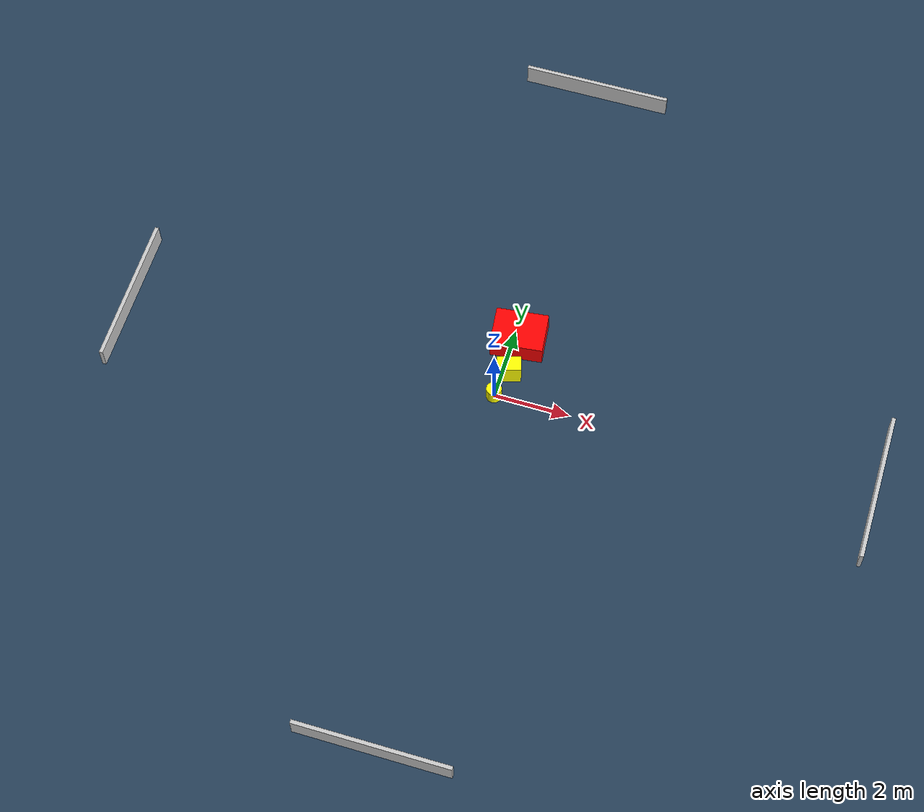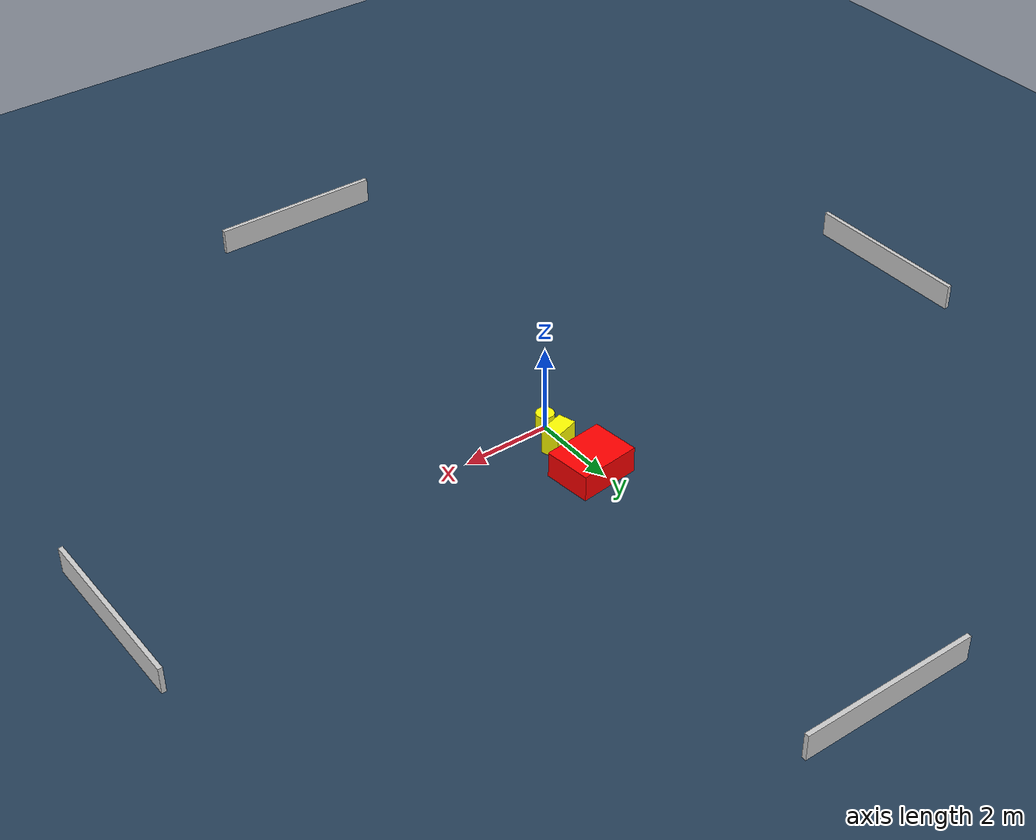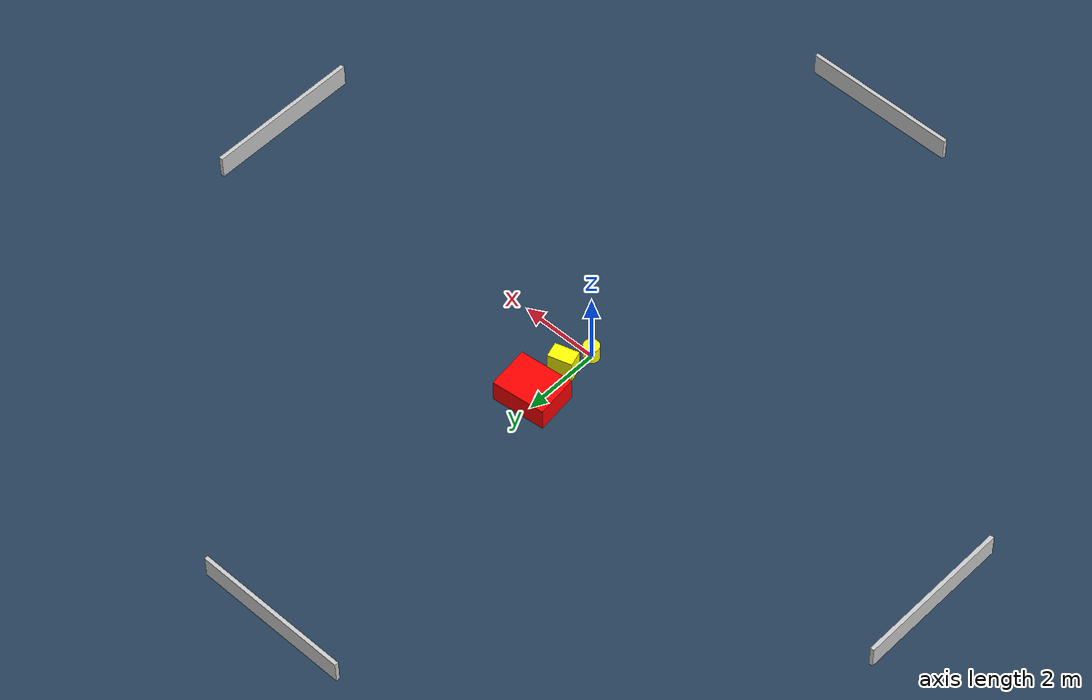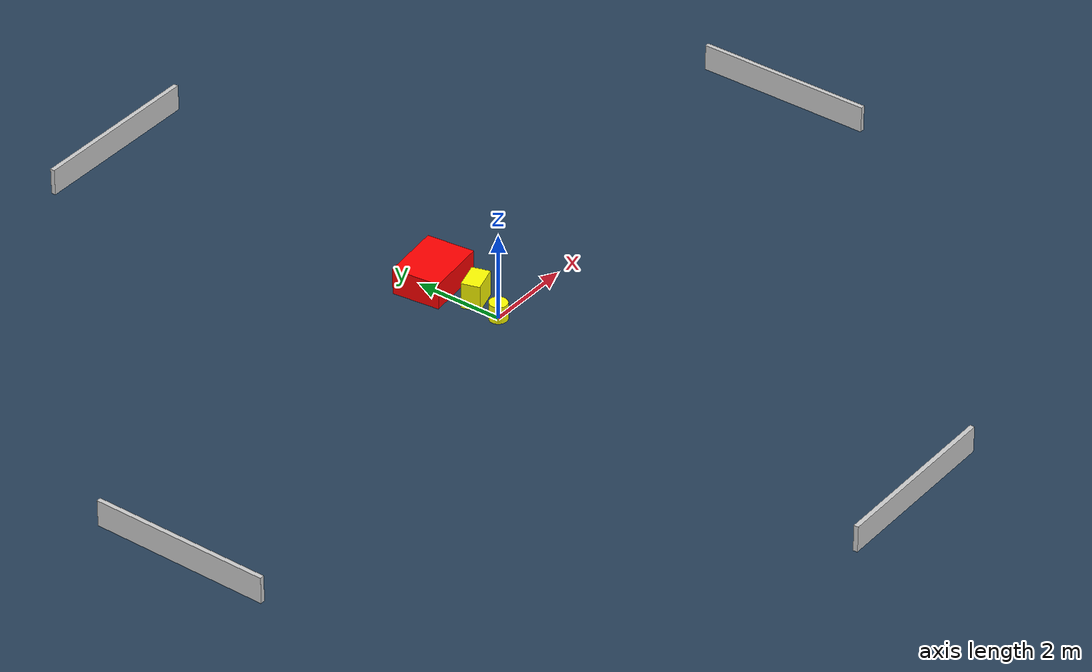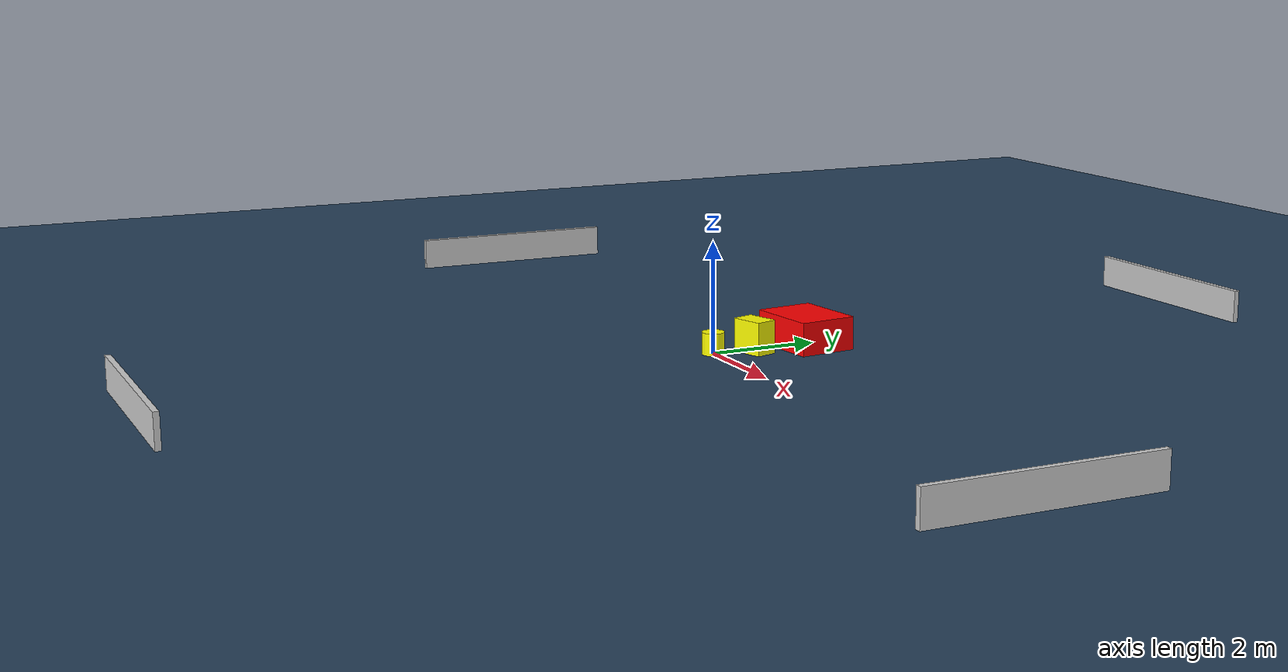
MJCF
<?xml version="1.0" ?>
<mujoco model="generated_environment">
  <option timestep="0.01" integrator="RK4" cone="elliptic"/>
  <default>
    <geom density="1"/>
  </default>
  <asset>
    <texture builtin="gradient" height="3072" name="skybox" rgb1="0.3 0.5 0.7" rgb2="0 0 0" type="skybox" width="512"/>
    <texture builtin="checker" height="300" name="groundplane" rgb1="0.2 0.3 0.4" rgb2="0.1 0.2 0.3" type="2d" width="300"/>
    <material name="groundplane" reflectance="0.2" texrepeat="5 5" texture="groundplane"/>
  </asset>
  <worldbody>
    <light dir="0 0 -1" directional="true" pos="0 0 1.5"/>
    <geom condim="3" friction="0.5 0.005 0.001" material="groundplane" name="floor" pos="0 0 0" size="0 0 0.05" type="plane"/>
    <body name="walls">
      <geom name="wall_1" condim="4" pos="-10.0 0.0 0.3" rgba="0.800000011920929 0.800000011920929 0.800000011920929 1.0" size="0.05 2.0 0.3" type="box"/>
      <geom name="wall_2" condim="4" pos="10.0 0.0 0.3" rgba="0.800000011920929 0.800000011920929 0.800000011920929 1.0" size="0.05 2.0 0.3" type="box"/>
      <geom name="wall_3" condim="4" pos="0.0 -10.0 0.3" rgba="0.800000011920929 0.800000011920929 0.800000011920929 1.0" size="2.0 0.05 0.3" type="box"/>
      <geom name="wall_4" condim="4" pos="0.0 10.0 0.3" rgba="0.800000011920929 0.800000011920929 0.800000011920929 1.0" size="2.0 0.05 0.3" type="box"/>
    </body>
    <body name="robot">
      <joint name="joint_x" type="slide" pos="0 0 0" axis="1 0 0"/>
      <joint name="joint_y" type="slide" pos="0 0 0" axis="0 1 0"/>
      <geom name="robot" type="cylinder" pos="0.0 0.0 0.2" size="0.2 0.2 0.0" mass="5.0" friction="1.0 0.005 0.0001" condim="4" rgba="1.0 1.0 0.0 1.0"/>
    </body>
    <body name="obstacle_1_movable">
      <geom name="obstacle_1_movable" condim="4" pos="0.1933362437932872 0.7172127710218116 0.3" euler="0 0 106.83627543943436" friction="0.0 0.005 0.001" rgba="1.0 1.0 0.0 1.0" size="0.20250886550733693 0.30854465626845934 0.3" type="box" mass="0.1"/>
      <joint type="free"/>
    </body>
    <body name="obstacle_2_static">
      <geom name="obstacle_2_static" condim="4" pos="0.15896869173125125 1.7668343116616954 0.3" euler="0 0 276.44898193713266" friction="0.0 0.005 0.001" rgba="1.0 0.0 0.0 1.0" size="0.5405635592346059 0.6923125179233492 0.3" type="box"/>
    </body>
  </worldbody>
  <actuator>
    <motor name="actuator_x" joint="joint_x" gear="1" ctrlrange="-1 1"/>
    <motor name="actuator_y" joint="joint_y" gear="1" ctrlrange="-1 1"/>
  </actuator>
</mujoco>
